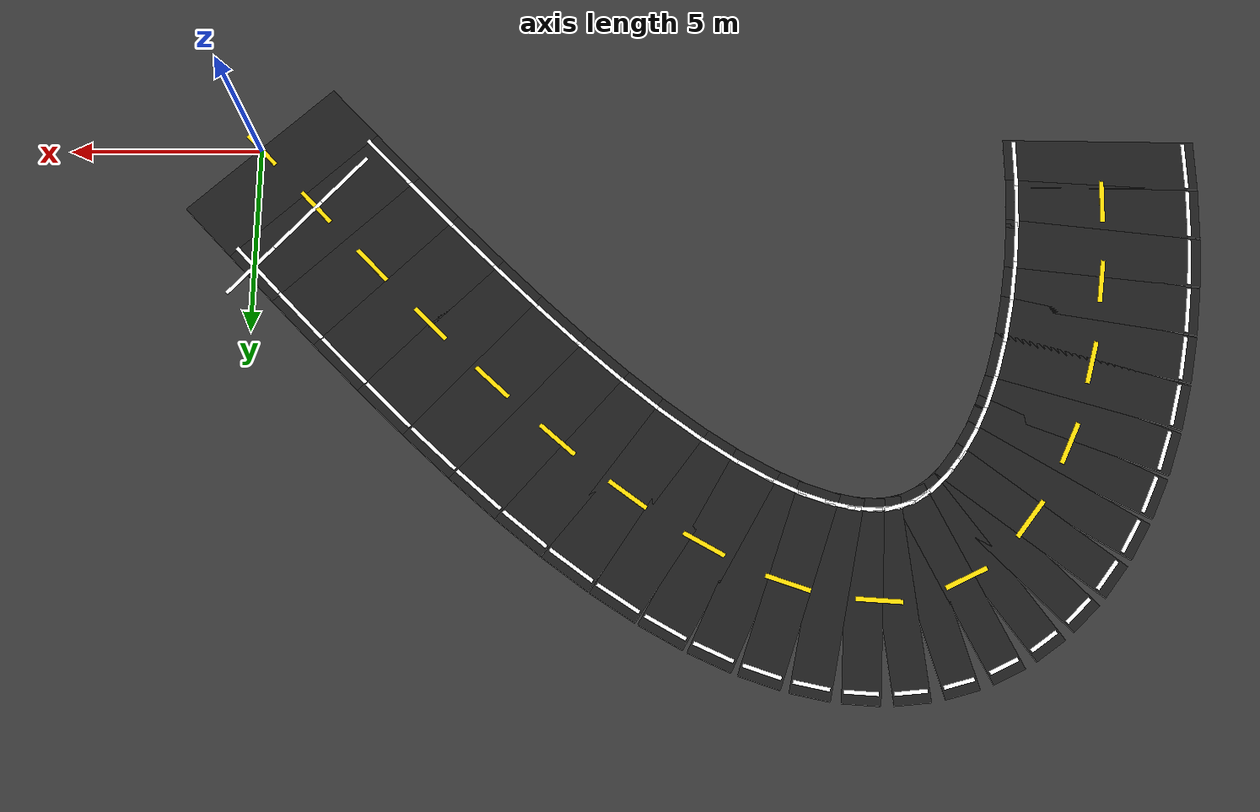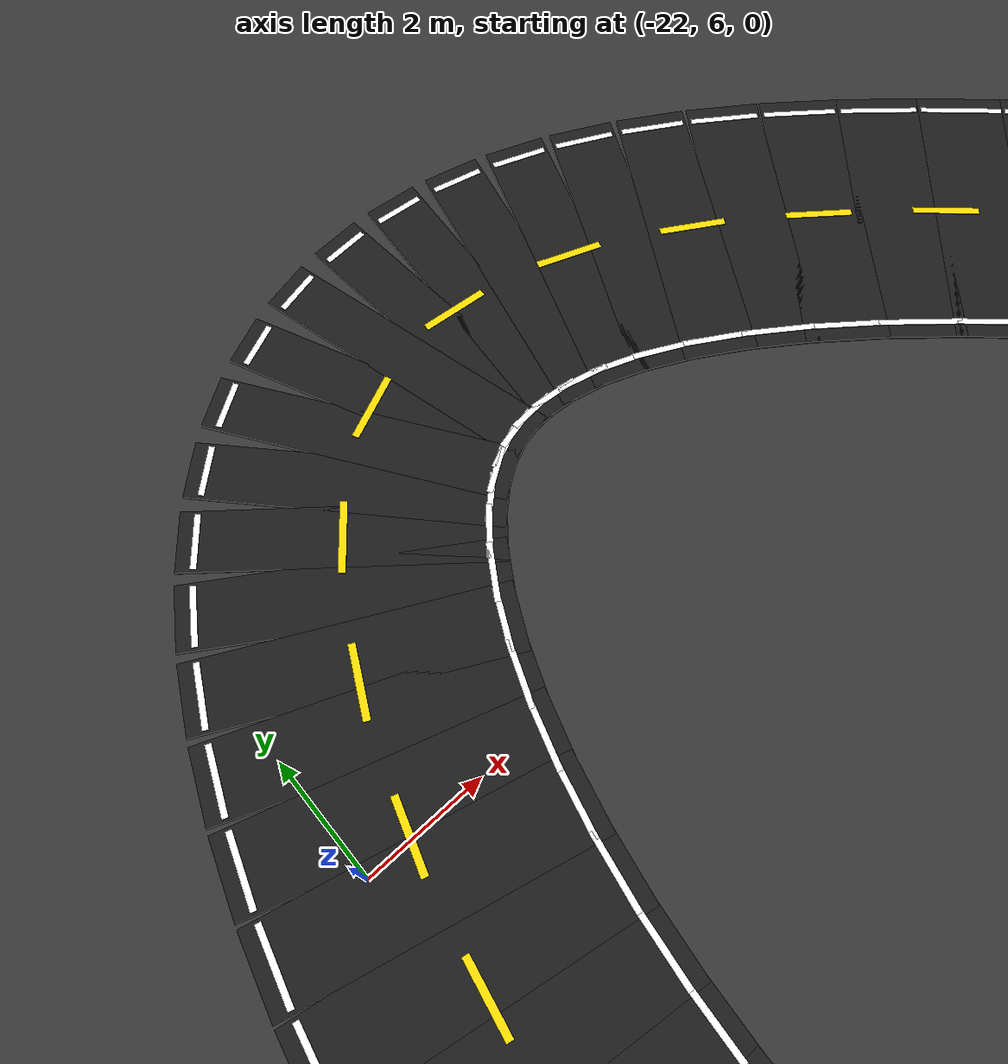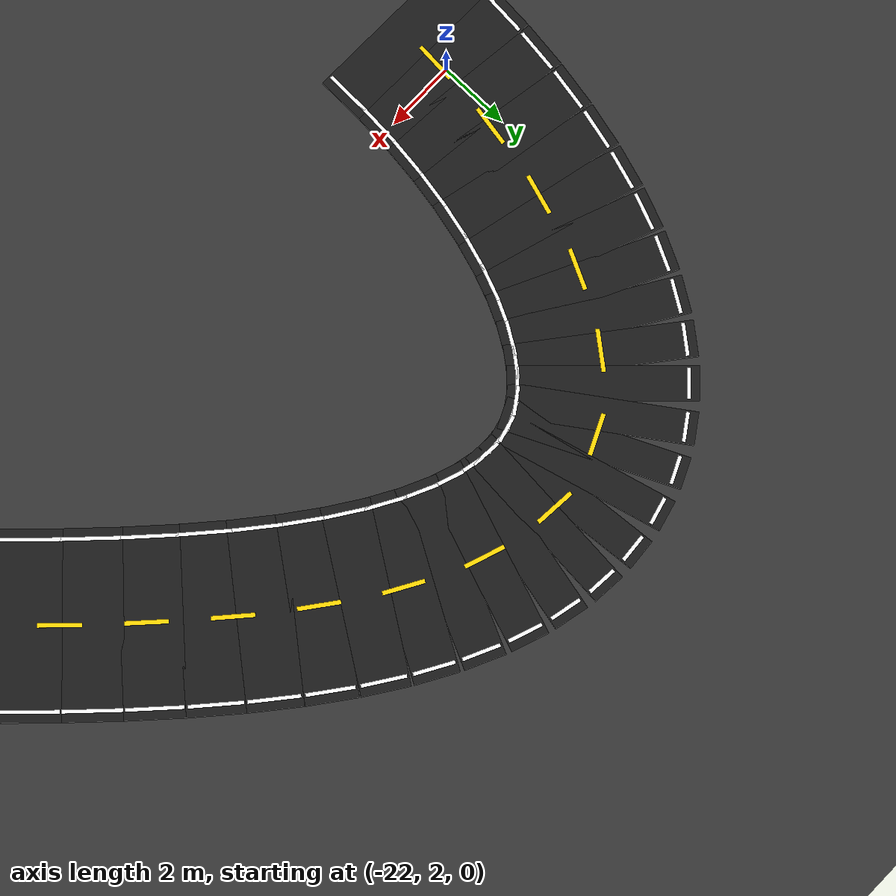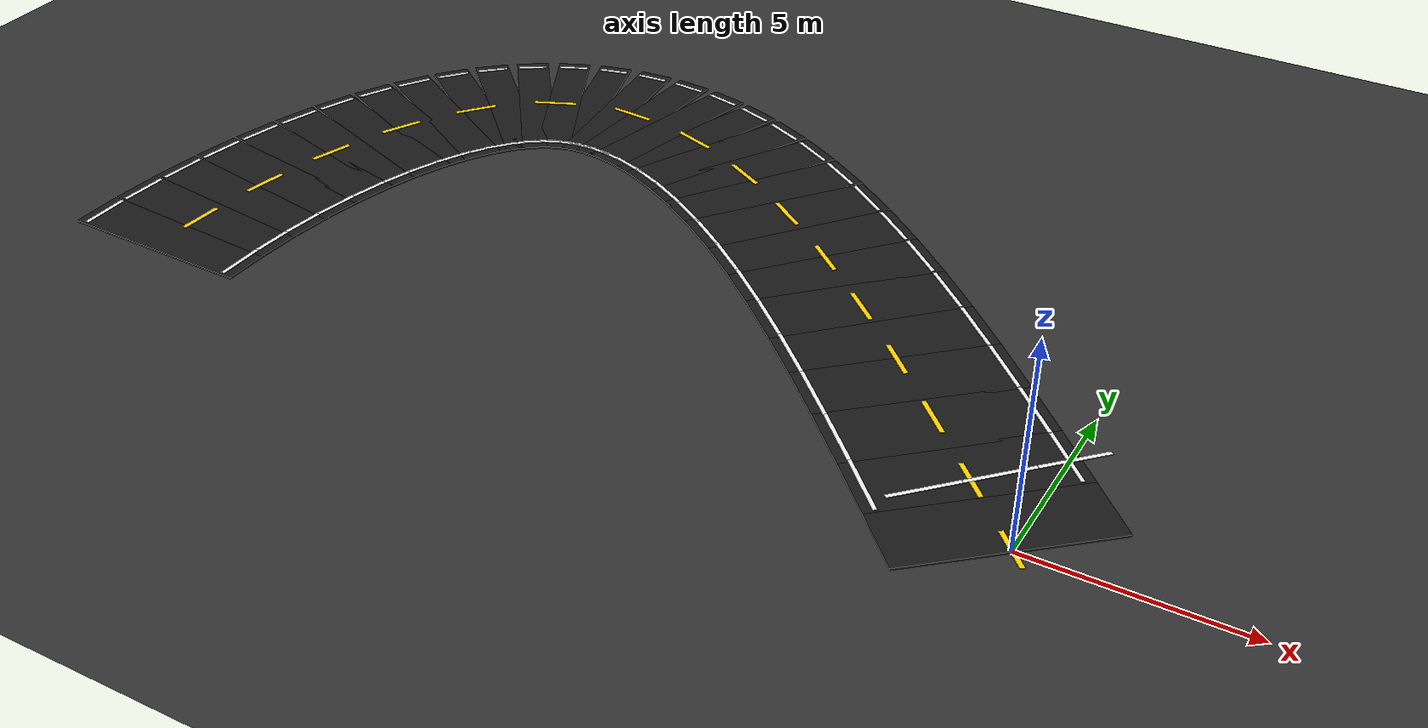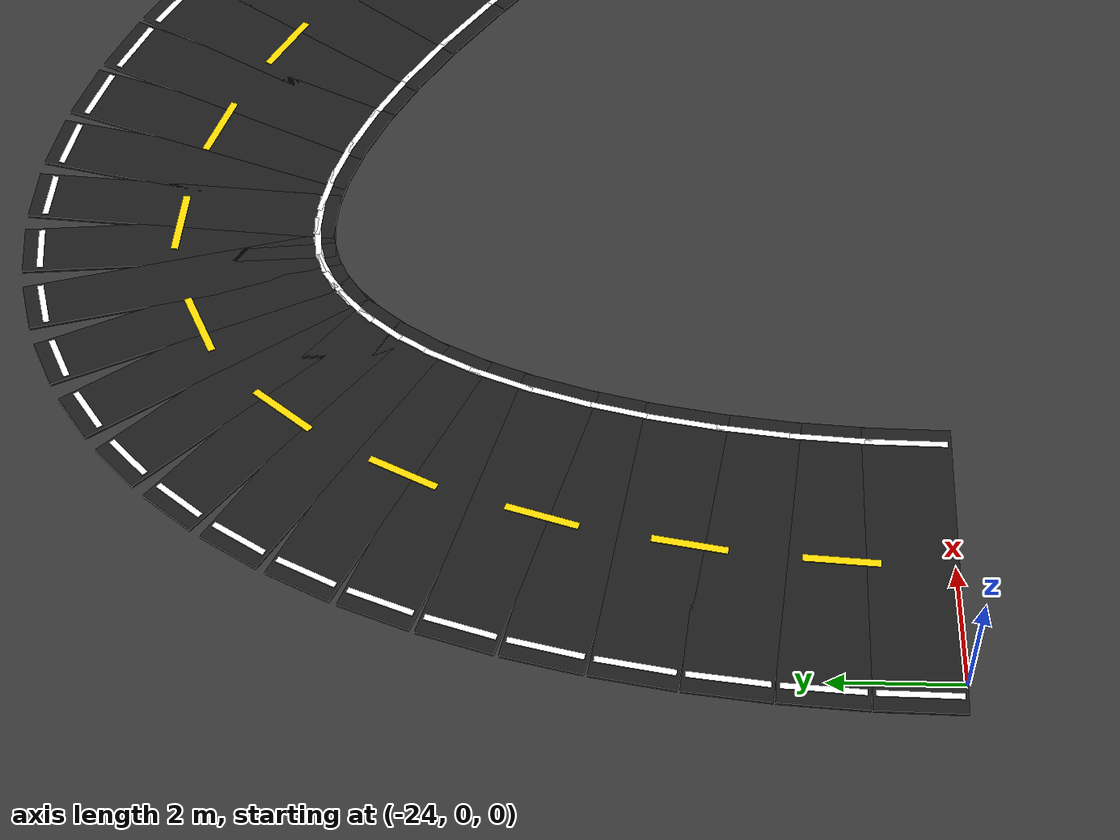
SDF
<sdf version="1.6">
 <world name="adas_figure8_circuit">
  <model name="ground">
   <static>true</static>
   <link name="link">
    <collision name="collision">
     <geometry><plane><normal>0 0 1</normal><size>80.0 80.0</size></plane></geometry>
    </collision>
    <visual name="visual">
     <geometry><plane><normal>0 0 1</normal><size>80.0 80.0</size></plane></geometry>
     <material><ambient>0.16 0.16 0.16 1</ambient><diffuse>0.20 0.20 0.20 1</diffuse></material>
    </visual>
   </link>
  </model>
  <model name="road_060">
   <static>true</static>
   <pose>-0.5757 0.6272 0.025 0 0 2.313427</pose>
   <link name="link">
    <collision name="collision"><geometry><box><size>1.8027 5.000 0.05</size></box></geometry></collision>
    <visual name="visual">
     <geometry><box><size>1.8027 5.000 0.05</size></box></geometry>
     <material><ambient>0.07 0.07 0.07 1</ambient><diffuse>0.10 0.10 0.10 1</diffuse></material>
    </visual>
   </link>
  </model>
  <model name="road_061">
   <static>true</static>
   <pose>-1.7255 1.8746 0.025 0 0 2.317549</pose>
   <link name="link">
    <collision name="collision"><geometry><box><size>1.7904 5.000 0.05</size></box></geometry></collision>
    <visual name="visual">
     <geometry><box><size>1.7904 5.000 0.05</size></box></geometry>
     <material><ambient>0.07 0.07 0.07 1</ambient><diffuse>0.10 0.10 0.10 1</diffuse></material>
    </visual>
   </link>
  </model>
  <model name="road_062">
   <static>true</static>
   <pose>-2.8706 3.1016 0.025 0 0 2.325917</pose>
   <link name="link">
    <collision name="collision"><geometry><box><size>1.7661 5.000 0.05</size></box></geometry></collision>
    <visual name="visual">
     <geometry><box><size>1.7661 5.000 0.05</size></box></geometry>
     <material><ambient>0.07 0.07 0.07 1</ambient><diffuse>0.10 0.10 0.10 1</diffuse></material>
    </visual>
   </link>
  </model>
  <model name="road_063">
   <static>true</static>
   <pose>-4.0078 4.2945 0.025 0 0 2.338784</pose>
   <link name="link">
    <collision name="collision"><geometry><box><size>1.7302 5.000 0.05</size></box></geometry></collision>
    <visual name="visual">
     <geometry><box><size>1.7302 5.000 0.05</size></box></geometry>
     <material><ambient>0.07 0.07 0.07 1</ambient><diffuse>0.10 0.10 0.10 1</diffuse></material>
    </visual>
   </link>
  </model>
  <model name="road_064">
   <static>true</static>
   <pose>-5.1340 5.4404 0.025 0 0 2.356552</pose>
   <link name="link">
    <collision name="collision"><geometry><box><size>1.6833 5.000 0.05</size></box></geometry></collision>
    <visual name="visual">
     <geometry><box><size>1.6833 5.000 0.05</size></box></geometry>
     <material><ambient>0.07 0.07 0.07 1</ambient><diffuse>0.10 0.10 0.10 1</diffuse></material>
    </visual>
   </link>
  </model>
  <model name="road_065">
   <static>true</static>
   <pose>-6.2462 6.5267 0.025 0 0 2.379794</pose>
   <link name="link">
    <collision name="collision"><geometry><box><size>1.6262 5.000 0.05</size></box></geometry></collision>
    <visual name="visual">
     <geometry><box><size>1.6262 5.000 0.05</size></box></geometry>
     <material><ambient>0.07 0.07 0.07 1</ambient><diffuse>0.10 0.10 0.10 1</diffuse></material>
    </visual>
   </link>
  </model>
  <model name="road_066">
   <static>true</static>
   <pose>-7.3412 7.5415 0.025 0 0 2.409289</pose>
   <link name="link">
    <collision name="collision"><geometry><box><size>1.5600 5.000 0.05</size></box></geometry></collision>
    <visual name="visual">
     <geometry><box><size>1.5600 5.000 0.05</size></box></geometry>
     <material><ambient>0.07 0.07 0.07 1</ambient><diffuse>0.10 0.10 0.10 1</diffuse></material>
    </visual>
   </link>
  </model>
  <model name="road_067">
   <static>true</static>
   <pose>-8.4162 8.4737 0.025 0 0 2.446072</pose>
   <link name="link">
    <collision name="collision"><geometry><box><size>1.4861 5.000 0.05</size></box></geometry></collision>
    <visual name="visual">
     <geometry><box><size>1.4861 5.000 0.05</size></box></geometry>
     <material><ambient>0.07 0.07 0.07 1</ambient><diffuse>0.10 0.10 0.10 1</diffuse></material>
    </visual>
   </link>
  </model>
  <model name="road_068">
   <static>true</static>
   <pose>-9.4680 9.3130 0.025 0 0 2.491490</pose>
   <link name="link">
    <collision name="collision"><geometry><box><size>1.4060 5.000 0.05</size></box></geometry></collision>
    <visual name="visual">
     <geometry><box><size>1.4060 5.000 0.05</size></box></geometry>
     <material><ambient>0.07 0.07 0.07 1</ambient><diffuse>0.10 0.10 0.10 1</diffuse></material>
    </visual>
   </link>
  </model>
  <model name="road_069">
   <static>true</static>
   <pose>-10.4939 10.0503 0.025 0 0 2.547260</pose>
   <link name="link">
    <collision name="collision"><geometry><box><size>1.3217 5.000 0.05</size></box></geometry></collision>
    <visual name="visual">
     <geometry><box><size>1.3217 5.000 0.05</size></box></geometry>
     <material><ambient>0.07 0.07 0.07 1</ambient><diffuse>0.10 0.10 0.10 1</diffuse></material>
    </visual>
   </link>
  </model>
  <model name="road_070">
   <static>true</static>
   <pose>-11.4910 10.6774 0.025 0 0 2.615516</pose>
   <link name="link">
    <collision name="collision"><geometry><box><size>1.2356 5.000 0.05</size></box></geometry></collision>
    <visual name="visual">
     <geometry><box><size>1.2356 5.000 0.05</size></box></geometry>
     <material><ambient>0.07 0.07 0.07 1</ambient><diffuse>0.10 0.10 0.10 1</diffuse></material>
    </visual>
   </link>
  </model>
  <model name="road_071">
   <static>true</static>
   <pose>-12.4567 11.1876 0.025 0 0 2.698785</pose>
   <link name="link">
    <collision name="collision"><geometry><box><size>1.1505 5.000 0.05</size></box></geometry></collision>
    <visual name="visual">
     <geometry><box><size>1.1505 5.000 0.05</size></box></geometry>
     <material><ambient>0.07 0.07 0.07 1</ambient><diffuse>0.10 0.10 0.10 1</diffuse></material>
    </visual>
   </link>
  </model>
  <model name="road_072">
   <static>true</static>
   <pose>-13.3882 11.5752 0.025 0 0 2.799787</pose>
   <link name="link">
    <collision name="collision"><geometry><box><size>1.0699 5.000 0.05</size></box></geometry></collision>
    <visual name="visual">
     <geometry><box><size>1.0699 5.000 0.05</size></box></geometry>
     <material><ambient>0.07 0.07 0.07 1</ambient><diffuse>0.10 0.10 0.10 1</diffuse></material>
    </visual>
   </link>
  </model>
  <model name="road_073">
   <static>true</static>
   <pose>-14.2830 11.8360 0.025 0 0 2.920897</pose>
   <link name="link">
    <collision name="collision"><geometry><box><size>0.9976 5.000 0.05</size></box></geometry></collision>
    <visual name="visual">
     <geometry><box><size>0.9976 5.000 0.05</size></box></geometry>
     <material><ambient>0.07 0.07 0.07 1</ambient><diffuse>0.10 0.10 0.10 1</diffuse></material>
    </visual>
   </link>
  </model>
  <model name="road_074">
   <static>true</static>
   <pose>-15.1386 11.9671 0.025 0 0 3.063072</pose>
   <link name="link">
    <collision name="collision"><geometry><box><size>0.9381 5.000 0.05</size></box></geometry></collision>
    <visual name="visual">
     <geometry><box><size>0.9381 5.000 0.05</size></box></geometry>
     <material><ambient>0.07 0.07 0.07 1</ambient><diffuse>0.10 0.10 0.10 1</diffuse></material>
    </visual>
   </link>
  </model>
  <model name="road_075">
   <static>true</static>
   <pose>-15.9528 11.9671 0.025 0 0 -3.058868</pose>
   <link name="link">
    <collision name="collision"><geometry><box><size>0.8956 5.000 0.05</size></box></geometry></collision>
    <visual name="visual">
     <geometry><box><size>0.8956 5.000 0.05</size></box></geometry>
     <material><ambient>0.07 0.07 0.07 1</ambient><diffuse>0.10 0.10 0.10 1</diffuse></material>
    </visual>
   </link>
  </model>
  <model name="road_076">
   <static>true</static>
   <pose>-16.7232 11.8360 0.025 0 0 -2.884716</pose>
   <link name="link">
    <collision name="collision"><geometry><box><size>0.8734 5.000 0.05</size></box></geometry></collision>
    <visual name="visual">
     <geometry><box><size>0.8734 5.000 0.05</size></box></geometry>
     <material><ambient>0.07 0.07 0.07 1</ambient><diffuse>0.10 0.10 0.10 1</diffuse></material>
    </visual>
   </link>
  </model>
  <model name="road_077">
   <static>true</static>
   <pose>-17.4478 11.5752 0.025 0 0 -2.707447</pose>
   <link name="link">
    <collision name="collision"><geometry><box><size>0.8729 5.000 0.05</size></box></geometry></collision>
    <visual name="visual">
     <geometry><box><size>0.8729 5.000 0.05</size></box></geometry>
     <material><ambient>0.07 0.07 0.07 1</ambient><diffuse>0.10 0.10 0.10 1</diffuse></material>
    </visual>
   </link>
  </model>
  <model name="road_078">
   <static>true</static>
   <pose>-18.1246 11.1876 0.025 0 0 -2.537619</pose>
   <link name="link">
    <collision name="collision"><geometry><box><size>0.8926 5.000 0.05</size></box></geometry></collision>
    <visual name="visual">
     <geometry><box><size>0.8926 5.000 0.05</size></box></geometry>
     <material><ambient>0.07 0.07 0.07 1</ambient><diffuse>0.10 0.10 0.10 1</diffuse></material>
    </visual>
   </link>
  </model>
  <model name="road_079">
   <static>true</static>
   <pose>-18.7517 10.6774 0.025 0 0 -2.383120</pose>
   <link name="link">
    <collision name="collision"><geometry><box><size>0.9291 5.000 0.05</size></box></geometry></collision>
    <visual name="visual">
     <geometry><box><size>0.9291 5.000 0.05</size></box></geometry>
     <material><ambient>0.07 0.07 0.07 1</ambient><diffuse>0.10 0.10 0.10 1</diffuse></material>
    </visual>
   </link>
  </model>
  <model name="road_080">
   <static>true</static>
   <pose>-19.3274 10.0503 0.025 0 0 -2.247587</pose>
   <link name="link">
    <collision name="collision"><geometry><box><size>0.9775 5.000 0.05</size></box></geometry></collision>
    <visual name="visual">
     <geometry><box><size>0.9775 5.000 0.05</size></box></geometry>
     <material><ambient>0.07 0.07 0.07 1</ambient><diffuse>0.10 0.10 0.10 1</diffuse></material>
    </visual>
   </link>
  </model>
  <model name="road_081">
   <static>true</static>
   <pose>-19.8501 9.3130 0.025 0 0 -2.131045</pose>
   <link name="link">
    <collision name="collision"><geometry><box><size>1.0331 5.000 0.05</size></box></geometry></collision>
    <visual name="visual">
     <geometry><box><size>1.0331 5.000 0.05</size></box></geometry>
     <material><ambient>0.07 0.07 0.07 1</ambient><diffuse>0.10 0.10 0.10 1</diffuse></material>
    </visual>
   </link>
  </model>
  <model name="road_082">
   <static>true</static>
   <pose>-20.3184 8.4737 0.025 0 0 -2.031453</pose>
   <link name="link">
    <collision name="collision"><geometry><box><size>1.0915 5.000 0.05</size></box></geometry></collision>
    <visual name="visual">
     <geometry><box><size>1.0915 5.000 0.05</size></box></geometry>
     <material><ambient>0.07 0.07 0.07 1</ambient><diffuse>0.10 0.10 0.10 1</diffuse></material>
    </visual>
   </link>
  </model>
  <model name="road_083">
   <static>true</static>
   <pose>-20.7310 7.5415 0.025 0 0 -1.946007</pose>
   <link name="link">
    <collision name="collision"><geometry><box><size>1.1491 5.000 0.05</size></box></geometry></collision>
    <visual name="visual">
     <geometry><box><size>1.1491 5.000 0.05</size></box></geometry>
     <material><ambient>0.07 0.07 0.07 1</ambient><diffuse>0.10 0.10 0.10 1</diffuse></material>
    </visual>
   </link>
  </model>
  <model name="road_084">
   <static>true</static>
   <pose>-21.0868 6.5267 0.025 0 0 -1.871890</pose>
   <link name="link">
    <collision name="collision"><geometry><box><size>1.2030 5.000 0.05</size></box></geometry></collision>
    <visual name="visual">
     <geometry><box><size>1.2030 5.000 0.05</size></box></geometry>
     <material><ambient>0.07 0.07 0.07 1</ambient><diffuse>0.10 0.10 0.10 1</diffuse></material>
    </visual>
   </link>
  </model>
  <model name="road_085">
   <static>true</static>
   <pose>-21.3848 5.4404 0.025 0 0 -1.806578</pose>
   <link name="link">
    <collision name="collision"><geometry><box><size>1.2510 5.000 0.05</size></box></geometry></collision>
    <visual name="visual">
     <geometry><box><size>1.2510 5.000 0.05</size></box></geometry>
     <material><ambient>0.07 0.07 0.07 1</ambient><diffuse>0.10 0.10 0.10 1</diffuse></material>
    </visual>
   </link>
  </model>
  <model name="road_086">
   <static>true</static>
   <pose>-21.6242 4.2945 0.025 0 0 -1.747916</pose>
   <link name="link">
    <collision name="collision"><geometry><box><size>1.2913 5.000 0.05</size></box></geometry></collision>
    <visual name="visual">
     <geometry><box><size>1.2913 5.000 0.05</size></box></geometry>
     <material><ambient>0.07 0.07 0.07 1</ambient><diffuse>0.10 0.10 0.10 1</diffuse></material>
    </visual>
   </link>
  </model>
  <model name="road_087">
   <static>true</static>
   <pose>-21.8043 3.1016 0.025 0 0 -1.694080</pose>
   <link name="link">
    <collision name="collision"><geometry><box><size>1.3225 5.000 0.05</size></box></geometry></collision>
    <visual name="visual">
     <geometry><box><size>1.3225 5.000 0.05</size></box></geometry>
     <material><ambient>0.07 0.07 0.07 1</ambient><diffuse>0.10 0.10 0.10 1</diffuse></material>
    </visual>
   </link>
  </model>
  <model name="road_088">
   <static>true</static>
   <pose>-21.9247 1.8746 0.025 0 0 -1.643510</pose>
   <link name="link">
    <collision name="collision"><geometry><box><size>1.3439 5.000 0.05</size></box></geometry></collision>
    <visual name="visual">
     <geometry><box><size>1.3439 5.000 0.05</size></box></geometry>
     <material><ambient>0.07 0.07 0.07 1</ambient><diffuse>0.10 0.10 0.10 1</diffuse></material>
    </visual>
   </link>
  </model>
  <model name="road_089">
   <static>true</static>
   <pose>-21.9849 0.6272 0.025 0 0 -1.594828</pose>
   <link name="link">
    <collision name="collision"><geometry><box><size>1.3547 5.000 0.05</size></box></geometry></collision>
    <visual name="visual">
     <geometry><box><size>1.3547 5.000 0.05</size></box></geometry>
     <material><ambient>0.07 0.07 0.07 1</ambient><diffuse>0.10 0.10 0.10 1</diffuse></material>
    </visual>
   </link>
  </model>
  <model name="center_dash_031">
   <static>true</static>
   <pose>0.0000 -0.0000 0.058 0 0 2.313427</pose>
   <link name="link">
    <visual name="visual">
     <geometry><box><size>1.150 0.12 0.02</size></box></geometry>
     <material><ambient>1 0.82 0 1</ambient><diffuse>1 0.82 0 1</diffuse></material>
    </visual>
   </link>
  </model>
  <model name="center_dash_032">
   <static>true</static>
   <pose>-1.5063 1.6378 0.058 0 0 2.317549</pose>
   <link name="link">
    <visual name="visual">
     <geometry><box><size>1.150 0.12 0.02</size></box></geometry>
     <material><ambient>1 0.82 0 1</ambient><diffuse>1 0.82 0 1</diffuse></material>
    </visual>
   </link>
  </model>
  <model name="center_dash_033">
   <static>true</static>
   <pose>-3.0242 3.2647 0.058 0 0 2.325917</pose>
   <link name="link">
    <visual name="visual">
     <geometry><box><size>1.150 0.12 0.02</size></box></geometry>
     <material><ambient>1 0.82 0 1</ambient><diffuse>1 0.82 0 1</diffuse></material>
    </visual>
   </link>
  </model>
  <model name="center_dash_034">
   <static>true</static>
   <pose>-4.5643 4.8707 0.058 0 0 2.338784</pose>
   <link name="link">
    <visual name="visual">
     <geometry><box><size>1.150 0.12 0.02</size></box></geometry>
     <material><ambient>1 0.82 0 1</ambient><diffuse>1 0.82 0 1</diffuse></material>
    </visual>
   </link>
  </model>
  <model name="center_dash_035">
   <static>true</static>
   <pose>-6.1482 6.4333 0.058 0 0 2.379794</pose>
   <link name="link">
    <visual name="visual">
     <geometry><box><size>1.150 0.12 0.02</size></box></geometry>
     <material><ambient>1 0.82 0 1</ambient><diffuse>1 0.82 0 1</diffuse></material>
    </visual>
   </link>
  </model>
  <model name="center_dash_036">
   <static>true</static>
   <pose>-7.7849 7.9404 0.058 0 0 2.409289</pose>
   <link name="link">
    <visual name="visual">
     <geometry><box><size>1.150 0.12 0.02</size></box></geometry>
     <material><ambient>1 0.82 0 1</ambient><diffuse>1 0.82 0 1</diffuse></material>
    </visual>
   </link>
  </model>
  <model name="center_dash_037">
   <static>true</static>
   <pose>-9.5099 9.3449 0.058 0 0 2.491490</pose>
   <link name="link">
    <visual name="visual">
     <geometry><box><size>1.150 0.12 0.02</size></box></geometry>
     <material><ambient>1 0.82 0 1</ambient><diffuse>1 0.82 0 1</diffuse></material>
    </visual>
   </link>
  </model>
  <model name="center_dash_038">
   <static>true</static>
   <pose>-11.3486 10.5947 0.058 0 0 2.615516</pose>
   <link name="link">
    <visual name="visual">
     <geometry><box><size>1.150 0.12 0.02</size></box></geometry>
     <material><ambient>1 0.82 0 1</ambient><diffuse>1 0.82 0 1</diffuse></material>
    </visual>
   </link>
  </model>
  <model name="center_dash_039">
   <static>true</static>
   <pose>-13.3478 11.5609 0.058 0 0 2.799787</pose>
   <link name="link">
    <visual name="visual">
     <geometry><box><size>1.150 0.12 0.02</size></box></geometry>
     <material><ambient>1 0.82 0 1</ambient><diffuse>1 0.82 0 1</diffuse></material>
    </visual>
   </link>
  </model>
  <model name="center_dash_040">
   <static>true</static>
   <pose>-15.5181 11.9970 0.058 0 0 3.063072</pose>
   <link name="link">
    <visual name="visual">
     <geometry><box><size>1.150 0.12 0.02</size></box></geometry>
     <material><ambient>1 0.82 0 1</ambient><diffuse>1 0.82 0 1</diffuse></material>
    </visual>
   </link>
  </model>
  <model name="center_dash_041">
   <static>true</static>
   <pose>-17.6577 11.4779 0.058 0 0 -2.707447</pose>
   <link name="link">
    <visual name="visual">
     <geometry><box><size>1.150 0.12 0.02</size></box></geometry>
     <material><ambient>1 0.82 0 1</ambient><diffuse>1 0.82 0 1</diffuse></material>
    </visual>
   </link>
  </model>
  <model name="center_dash_042">
   <static>true</static>
   <pose>-19.3334 10.0427 0.058 0 0 -2.247587</pose>
   <link name="link">
    <visual name="visual">
     <geometry><box><size>1.150 0.12 0.02</size></box></geometry>
     <material><ambient>1 0.82 0 1</ambient><diffuse>1 0.82 0 1</diffuse></material>
    </visual>
   </link>
  </model>
  <model name="center_dash_043">
   <static>true</static>
   <pose>-20.4816 8.1448 0.058 0 0 -2.031453</pose>
   <link name="link">
    <visual name="visual">
     <geometry><box><size>1.150 0.12 0.02</size></box></geometry>
     <material><ambient>1 0.82 0 1</ambient><diffuse>1 0.82 0 1</diffuse></material>
    </visual>
   </link>
  </model>
  <model name="center_dash_044">
   <static>true</static>
   <pose>-21.2339 6.0532 0.058 0 0 -1.871890</pose>
   <link name="link">
    <visual name="visual">
     <geometry><box><size>1.150 0.12 0.02</size></box></geometry>
     <material><ambient>1 0.82 0 1</ambient><diffuse>1 0.82 0 1</diffuse></material>
    </visual>
   </link>
  </model>
  <model name="center_dash_045">
   <static>true</static>
   <pose>-21.6987 3.8783 0.058 0 0 -1.747916</pose>
   <link name="link">
    <visual name="visual">
     <geometry><box><size>1.150 0.12 0.02</size></box></geometry>
     <material><ambient>1 0.82 0 1</ambient><diffuse>1 0.82 0 1</diffuse></material>
    </visual>
   </link>
  </model>
  <model name="center_dash_046">
   <static>true</static>
   <pose>-21.9398 1.6674 0.058 0 0 -1.643510</pose>
   <link name="link">
    <visual name="visual">
     <geometry><box><size>1.150 0.12 0.02</size></box></geometry>
     <material><ambient>1 0.82 0 1</ambient><diffuse>1 0.82 0 1</diffuse></material>
    </visual>
   </link>
  </model>
  <model name="edge_left_000">
   <static>true</static>
   <pose>-1.0598 2.1284 0.058 0 0 0.828166</pose>
   <link name="link">
    <visual name="visual">
     <geometry><box><size>1.7027 0.10 0.02</size></box></geometry>
     <material><ambient>0.95 0.95 0.95 1</ambient><diffuse>0.95 0.95 0.95 1</diffuse></material>
    </visual>
   </link>
  </model>
  <model name="edge_left_001">
   <static>true</static>
   <pose>0.0963 3.3826 0.058 0 0 0.824044</pose>
   <link name="link">
    <visual name="visual">
     <geometry><box><size>1.6904 0.10 0.02</size></box></geometry>
     <material><ambient>0.95 0.95 0.95 1</ambient><diffuse>0.95 0.95 0.95 1</diffuse></material>
    </visual>
   </link>
  </model>
  <model name="edge_left_061">
   <static>true</static>
   <pose>-3.3548 0.3667 0.058 0 0 2.317549</pose>
   <link name="link">
    <visual name="visual">
     <geometry><box><size>1.6904 0.10 0.02</size></box></geometry>
     <material><ambient>0.95 0.95 0.95 1</ambient><diffuse>0.95 0.95 0.95 1</diffuse></material>
    </visual>
   </link>
  </model>
  <model name="edge_left_062">
   <static>true</static>
   <pose>-4.4872 1.5800 0.058 0 0 2.325917</pose>
   <link name="link">
    <visual name="visual">
     <geometry><box><size>1.6661 0.10 0.02</size></box></geometry>
     <material><ambient>0.95 0.95 0.95 1</ambient><diffuse>0.95 0.95 0.95 1</diffuse></material>
    </visual>
   </link>
  </model>
  <model name="edge_left_063">
   <static>true</static>
   <pose>-5.6047 2.7523 0.058 0 0 2.338784</pose>
   <link name="link">
    <visual name="visual">
     <geometry><box><size>1.6302 0.10 0.02</size></box></geometry>
     <material><ambient>0.95 0.95 0.95 1</ambient><diffuse>0.95 0.95 0.95 1</diffuse></material>
    </visual>
   </link>
  </model>
  <model name="edge_left_064">
   <static>true</static>
   <pose>-6.7033 3.8701 0.058 0 0 2.356552</pose>
   <link name="link">
    <visual name="visual">
     <geometry><box><size>1.5833 0.10 0.02</size></box></geometry>
     <material><ambient>0.95 0.95 0.95 1</ambient><diffuse>0.95 0.95 0.95 1</diffuse></material>
    </visual>
   </link>
  </model>
  <model name="edge_left_065">
   <static>true</static>
   <pose>-7.7785 4.9203 0.058 0 0 2.379794</pose>
   <link name="link">
    <visual name="visual">
     <geometry><box><size>1.5262 0.10 0.02</size></box></geometry>
     <material><ambient>0.95 0.95 0.95 1</ambient><diffuse>0.95 0.95 0.95 1</diffuse></material>
    </visual>
   </link>
  </model>
  <model name="edge_left_066">
   <static>true</static>
   <pose>-8.8255 5.8906 0.058 0 0 2.409289</pose>
   <link name="link">
    <visual name="visual">
     <geometry><box><size>1.4600 0.10 0.02</size></box></geometry>
     <material><ambient>0.95 0.95 0.95 1</ambient><diffuse>0.95 0.95 0.95 1</diffuse></material>
    </visual>
   </link>
  </model>
  <model name="edge_left_067">
   <static>true</static>
   <pose>-9.8387 6.7693 0.058 0 0 2.446072</pose>
   <link name="link">
    <visual name="visual">
     <geometry><box><size>1.3861 0.10 0.02</size></box></geometry>
     <material><ambient>0.95 0.95 0.95 1</ambient><diffuse>0.95 0.95 0.95 1</diffuse></material>
    </visual>
   </link>
  </model>
  <model name="edge_left_068">
   <static>true</static>
   <pose>-10.8117 7.5458 0.058 0 0 2.491490</pose>
   <link name="link">
    <visual name="visual">
     <geometry><box><size>1.3060 0.10 0.02</size></box></geometry>
     <material><ambient>0.95 0.95 0.95 1</ambient><diffuse>0.95 0.95 0.95 1</diffuse></material>
    </visual>
   </link>
  </model>
  <model name="edge_left_069">
   <static>true</static>
   <pose>-11.7370 8.2109 0.058 0 0 2.547260</pose>
   <link name="link">
    <visual name="visual">
     <geometry><box><size>1.2217 0.10 0.02</size></box></geometry>
     <material><ambient>0.95 0.95 0.95 1</ambient><diffuse>0.95 0.95 0.95 1</diffuse></material>
    </visual>
   </link>
  </model>
  <model name="edge_left_070">
   <static>true</static>
   <pose>-12.6058 8.7576 0.058 0 0 2.615516</pose>
   <link name="link">
    <visual name="visual">
     <geometry><box><size>1.1356 0.10 0.02</size></box></geometry>
     <material><ambient>0.95 0.95 0.95 1</ambient><diffuse>0.95 0.95 0.95 1</diffuse></material>
    </visual>
   </link>
  </model>
  <model name="edge_left_071">
   <static>true</static>
   <pose>-13.4079 9.1817 0.058 0 0 2.698785</pose>
   <link name="link">
    <visual name="visual">
     <geometry><box><size>1.0505 0.10 0.02</size></box></geometry>
     <material><ambient>0.95 0.95 0.95 1</ambient><diffuse>0.95 0.95 0.95 1</diffuse></material>
    </visual>
   </link>
  </model>
  <model name="edge_left_072">
   <static>true</static>
   <pose>-14.1323 9.4836 0.058 0 0 2.799787</pose>
   <link name="link">
    <visual name="visual">
     <geometry><box><size>0.9699 0.10 0.02</size></box></geometry>
     <material><ambient>0.95 0.95 0.95 1</ambient><diffuse>0.95 0.95 0.95 1</diffuse></material>
    </visual>
   </link>
  </model>
  <model name="edge_left_073">
   <static>true</static>
   <pose>-14.7689 9.6699 0.058 0 0 2.920897</pose>
   <link name="link">
    <visual name="visual">
     <geometry><box><size>0.8976 0.10 0.02</size></box></geometry>
     <material><ambient>0.95 0.95 0.95 1</ambient><diffuse>0.95 0.95 0.95 1</diffuse></material>
    </visual>
   </link>
  </model>
  <model name="edge_left_074">
   <static>true</static>
   <pose>-15.3127 9.7540 0.058 0 0 3.063072</pose>
   <link name="link">
    <visual name="visual">
     <geometry><box><size>0.8381 0.10 0.02</size></box></geometry>
     <material><ambient>0.95 0.95 0.95 1</ambient><diffuse>0.95 0.95 0.95 1</diffuse></material>
    </visual>
   </link>
  </model>
  <model name="edge_left_075">
   <static>true</static>
   <pose>-15.7693 9.7547 0.058 0 0 -3.058868</pose>
   <link name="link">
    <visual name="visual">
     <geometry><box><size>0.7956 0.10 0.02</size></box></geometry>
     <material><ambient>0.95 0.95 0.95 1</ambient><diffuse>0.95 0.95 0.95 1</diffuse></material>
    </visual>
   </link>
  </model>
  <model name="edge_left_076">
   <static>true</static>
   <pose>-16.1592 9.6889 0.058 0 0 -2.884716</pose>
   <link name="link">
    <visual name="visual">
     <geometry><box><size>0.7734 0.10 0.02</size></box></geometry>
     <material><ambient>0.95 0.95 0.95 1</ambient><diffuse>0.95 0.95 0.95 1</diffuse></material>
    </visual>
   </link>
  </model>
  <model name="edge_left_077">
   <static>true</static>
   <pose>-16.5140 9.5612 0.058 0 0 -2.707447</pose>
   <link name="link">
    <visual name="visual">
     <geometry><box><size>0.7729 0.10 0.02</size></box></geometry>
     <material><ambient>0.95 0.95 0.95 1</ambient><diffuse>0.95 0.95 0.95 1</diffuse></material>
    </visual>
   </link>
  </model>
  <model name="edge_left_078">
   <static>true</static>
   <pose>-16.8638 9.3604 0.058 0 0 -2.537619</pose>
   <link name="link">
    <visual name="visual">
     <geometry><box><size>0.7926 0.10 0.02</size></box></geometry>
     <material><ambient>0.95 0.95 0.95 1</ambient><diffuse>0.95 0.95 0.95 1</diffuse></material>
    </visual>
   </link>
  </model>
  <model name="edge_left_079">
   <static>true</static>
   <pose>-17.2247 9.0660 0.058 0 0 -2.383120</pose>
   <link name="link">
    <visual name="visual">
     <geometry><box><size>0.8291 0.10 0.02</size></box></geometry>
     <material><ambient>0.95 0.95 0.95 1</ambient><diffuse>0.95 0.95 0.95 1</diffuse></material>
    </visual>
   </link>
  </model>
  <model name="edge_left_080">
   <static>true</static>
   <pose>-17.5967 8.6599 0.058 0 0 -2.247587</pose>
   <link name="link">
    <visual name="visual">
     <geometry><box><size>0.8775 0.10 0.02</size></box></geometry>
     <material><ambient>0.95 0.95 0.95 1</ambient><diffuse>0.95 0.95 0.95 1</diffuse></material>
    </visual>
   </link>
  </model>
  <model name="edge_left_081">
   <static>true</static>
   <pose>-17.9695 8.1333 0.058 0 0 -2.131045</pose>
   <link name="link">
    <visual name="visual">
     <geometry><box><size>0.9331 0.10 0.02</size></box></geometry>
     <material><ambient>0.95 0.95 0.95 1</ambient><diffuse>0.95 0.95 0.95 1</diffuse></material>
    </visual>
   </link>
  </model>
  <model name="edge_left_082">
   <static>true</static>
   <pose>-18.3298 7.4868 0.058 0 0 -2.031453</pose>
   <link name="link">
    <visual name="visual">
     <geometry><box><size>0.9915 0.10 0.02</size></box></geometry>
     <material><ambient>0.95 0.95 0.95 1</ambient><diffuse>0.95 0.95 0.95 1</diffuse></material>
    </visual>
   </link>
  </model>
  <model name="edge_left_083">
   <static>true</static>
   <pose>-18.6655 6.7279 0.058 0 0 -1.946007</pose>
   <link name="link">
    <visual name="visual">
     <geometry><box><size>1.0491 0.10 0.02</size></box></geometry>
     <material><ambient>0.95 0.95 0.95 1</ambient><diffuse>0.95 0.95 0.95 1</diffuse></material>
    </visual>
   </link>
  </model>
  <model name="edge_left_084">
   <static>true</static>
   <pose>-18.9667 5.8683 0.058 0 0 -1.871890</pose>
   <link name="link">
    <visual name="visual">
     <geometry><box><size>1.1030 0.10 0.02</size></box></geometry>
     <material><ambient>0.95 0.95 0.95 1</ambient><diffuse>0.95 0.95 0.95 1</diffuse></material>
    </visual>
   </link>
  </model>
  <model name="edge_left_085">
   <static>true</static>
   <pose>-19.2262 4.9218 0.058 0 0 -1.806578</pose>
   <link name="link">
    <visual name="visual">
     <geometry><box><size>1.1510 0.10 0.02</size></box></geometry>
     <material><ambient>0.95 0.95 0.95 1</ambient><diffuse>0.95 0.95 0.95 1</diffuse></material>
    </visual>
   </link>
  </model>
  <model name="edge_left_086">
   <static>true</static>
   <pose>-19.4389 3.9034 0.058 0 0 -1.747916</pose>
   <link name="link">
    <visual name="visual">
     <geometry><box><size>1.1913 0.10 0.02</size></box></geometry>
     <material><ambient>0.95 0.95 0.95 1</ambient><diffuse>0.95 0.95 0.95 1</diffuse></material>
    </visual>
   </link>
  </model>
  <model name="edge_left_087">
   <static>true</static>
   <pose>-19.6012 2.8286 0.058 0 0 -1.694080</pose>
   <link name="link">
    <visual name="visual">
     <geometry><box><size>1.2225 0.10 0.02</size></box></geometry>
     <material><ambient>0.95 0.95 0.95 1</ambient><diffuse>0.95 0.95 0.95 1</diffuse></material>
    </visual>
   </link>
  </model>
  <model name="edge_left_088">
   <static>true</static>
   <pose>-19.7105 1.7134 0.058 0 0 -1.643510</pose>
   <link name="link">
    <visual name="visual">
     <geometry><box><size>1.2439 0.10 0.02</size></box></geometry>
     <material><ambient>0.95 0.95 0.95 1</ambient><diffuse>0.95 0.95 0.95 1</diffuse></material>
    </visual>
   </link>
  </model>
  <model name="edge_left_089">
   <static>true</static>
   <pose>-19.7656 0.5738 0.058 0 0 -1.594828</pose>
   <link name="link">
    <visual name="visual">
     <geometry><box><size>1.2547 0.10 0.02</size></box></geometry>
     <material><ambient>0.95 0.95 0.95 1</ambient><diffuse>0.95 0.95 0.95 1</diffuse></material>
    </visual>
   </link>
  </model>
  <model name="edge_left_119">
   <static>true</static>
   <pose>-2.2112 0.8741 0.058 0 0 0.828166</pose>
   <link name="link">
    <visual name="visual">
     <geometry><box><size>1.7027 0.10 0.02</size></box></geometry>
     <material><ambient>0.95 0.95 0.95 1</ambient><diffuse>0.95 0.95 0.95 1</diffuse></material>
    </visual>
   </link>
  </model>
  <model name="edge_right_061">
   <static>true</static>
   <pose>-0.0963 3.3826 0.058 0 0 2.317549</pose>
   <link name="link">
    <visual name="visual">
     <geometry><box><size>1.6904 0.10 0.02</size></box></geometry>
     <material><ambient>0.95 0.95 0.95 1</ambient><diffuse>0.95 0.95 0.95 1</diffuse></material>
    </visual>
   </link>
  </model>
  <model name="edge_right_062">
   <static>true</static>
   <pose>-1.2540 4.6231 0.058 0 0 2.325917</pose>
   <link name="link">
    <visual name="visual">
     <geometry><box><size>1.6661 0.10 0.02</size></box></geometry>
     <material><ambient>0.95 0.95 0.95 1</ambient><diffuse>0.95 0.95 0.95 1</diffuse></material>
    </visual>
   </link>
  </model>
  <model name="edge_right_063">
   <static>true</static>
   <pose>-2.4109 5.8367 0.058 0 0 2.338784</pose>
   <link name="link">
    <visual name="visual">
     <geometry><box><size>1.6302 0.10 0.02</size></box></geometry>
     <material><ambient>0.95 0.95 0.95 1</ambient><diffuse>0.95 0.95 0.95 1</diffuse></material>
    </visual>
   </link>
  </model>
  <model name="edge_right_064">
   <static>true</static>
   <pose>-3.5648 7.0108 0.058 0 0 2.356552</pose>
   <link name="link">
    <visual name="visual">
     <geometry><box><size>1.5833 0.10 0.02</size></box></geometry>
     <material><ambient>0.95 0.95 0.95 1</ambient><diffuse>0.95 0.95 0.95 1</diffuse></material>
    </visual>
   </link>
  </model>
  <model name="edge_right_065">
   <static>true</static>
   <pose>-4.7139 8.1331 0.058 0 0 2.379794</pose>
   <link name="link">
    <visual name="visual">
     <geometry><box><size>1.5262 0.10 0.02</size></box></geometry>
     <material><ambient>0.95 0.95 0.95 1</ambient><diffuse>0.95 0.95 0.95 1</diffuse></material>
    </visual>
   </link>
  </model>
  <model name="edge_right_066">
   <static>true</static>
   <pose>-5.8570 9.1924 0.058 0 0 2.409289</pose>
   <link name="link">
    <visual name="visual">
     <geometry><box><size>1.4600 0.10 0.02</size></box></geometry>
     <material><ambient>0.95 0.95 0.95 1</ambient><diffuse>0.95 0.95 0.95 1</diffuse></material>
    </visual>
   </link>
  </model>
  <model name="edge_right_067">
   <static>true</static>
   <pose>-6.9936 10.1780 0.058 0 0 2.446072</pose>
   <link name="link">
    <visual name="visual">
     <geometry><box><size>1.3861 0.10 0.02</size></box></geometry>
     <material><ambient>0.95 0.95 0.95 1</ambient><diffuse>0.95 0.95 0.95 1</diffuse></material>
    </visual>
   </link>
  </model>
  <model name="edge_right_068">
   <static>true</static>
   <pose>-8.1243 11.0801 0.058 0 0 2.491490</pose>
   <link name="link">
    <visual name="visual">
     <geometry><box><size>1.3060 0.10 0.02</size></box></geometry>
     <material><ambient>0.95 0.95 0.95 1</ambient><diffuse>0.95 0.95 0.95 1</diffuse></material>
    </visual>
   </link>
  </model>
  <model name="edge_right_069">
   <static>true</static>
   <pose>-9.2508 11.8896 0.058 0 0 2.547260</pose>
   <link name="link">
    <visual name="visual">
     <geometry><box><size>1.2217 0.10 0.02</size></box></geometry>
     <material><ambient>0.95 0.95 0.95 1</ambient><diffuse>0.95 0.95 0.95 1</diffuse></material>
    </visual>
   </link>
  </model>
  <model name="edge_right_070">
   <static>true</static>
   <pose>-10.3763 12.5972 0.058 0 0 2.615516</pose>
   <link name="link">
    <visual name="visual">
     <geometry><box><size>1.1356 0.10 0.02</size></box></geometry>
     <material><ambient>0.95 0.95 0.95 1</ambient><diffuse>0.95 0.95 0.95 1</diffuse></material>
    </visual>
   </link>
  </model>
  <model name="edge_right_071">
   <static>true</static>
   <pose>-11.5054 13.1935 0.058 0 0 2.698785</pose>
   <link name="link">
    <visual name="visual">
     <geometry><box><size>1.0505 0.10 0.02</size></box></geometry>
     <material><ambient>0.95 0.95 0.95 1</ambient><diffuse>0.95 0.95 0.95 1</diffuse></material>
    </visual>
   </link>
  </model>
  <model name="edge_right_072">
   <static>true</static>
   <pose>-12.6440 13.6668 0.058 0 0 2.799787</pose>
   <link name="link">
    <visual name="visual">
     <geometry><box><size>0.9699 0.10 0.02</size></box></geometry>
     <material><ambient>0.95 0.95 0.95 1</ambient><diffuse>0.95 0.95 0.95 1</diffuse></material>
    </visual>
   </link>
  </model>
  <model name="edge_right_073">
   <static>true</static>
   <pose>-13.7970 14.0022 0.058 0 0 2.920897</pose>
   <link name="link">
    <visual name="visual">
     <geometry><box><size>0.8976 0.10 0.02</size></box></geometry>
     <material><ambient>0.95 0.95 0.95 1</ambient><diffuse>0.95 0.95 0.95 1</diffuse></material>
    </visual>
   </link>
  </model>
  <model name="edge_right_074">
   <static>true</static>
   <pose>-14.9645 14.1803 0.058 0 0 3.063072</pose>
   <link name="link">
    <visual name="visual">
     <geometry><box><size>0.8381 0.10 0.02</size></box></geometry>
     <material><ambient>0.95 0.95 0.95 1</ambient><diffuse>0.95 0.95 0.95 1</diffuse></material>
    </visual>
   </link>
  </model>
  <model name="edge_right_075">
   <static>true</static>
   <pose>-16.1362 14.1795 0.058 0 0 -3.058868</pose>
   <link name="link">
    <visual name="visual">
     <geometry><box><size>0.7956 0.10 0.02</size></box></geometry>
     <material><ambient>0.95 0.95 0.95 1</ambient><diffuse>0.95 0.95 0.95 1</diffuse></material>
    </visual>
   </link>
  </model>
  <model name="edge_right_076">
   <static>true</static>
   <pose>-17.2872 13.9832 0.058 0 0 -2.884716</pose>
   <link name="link">
    <visual name="visual">
     <geometry><box><size>0.7734 0.10 0.02</size></box></geometry>
     <material><ambient>0.95 0.95 0.95 1</ambient><diffuse>0.95 0.95 0.95 1</diffuse></material>
    </visual>
   </link>
  </model>
  <model name="edge_right_077">
   <static>true</static>
   <pose>-18.3816 13.5893 0.058 0 0 -2.707447</pose>
   <link name="link">
    <visual name="visual">
     <geometry><box><size>0.7729 0.10 0.02</size></box></geometry>
     <material><ambient>0.95 0.95 0.95 1</ambient><diffuse>0.95 0.95 0.95 1</diffuse></material>
    </visual>
   </link>
  </model>
  <model name="edge_right_078">
   <static>true</static>
   <pose>-19.3853 13.0149 0.058 0 0 -2.537619</pose>
   <link name="link">
    <visual name="visual">
     <geometry><box><size>0.7926 0.10 0.02</size></box></geometry>
     <material><ambient>0.95 0.95 0.95 1</ambient><diffuse>0.95 0.95 0.95 1</diffuse></material>
    </visual>
   </link>
  </model>
  <model name="edge_right_079">
   <static>true</static>
   <pose>-20.2786 12.2889 0.058 0 0 -2.383120</pose>
   <link name="link">
    <visual name="visual">
     <geometry><box><size>0.8291 0.10 0.02</size></box></geometry>
     <material><ambient>0.95 0.95 0.95 1</ambient><diffuse>0.95 0.95 0.95 1</diffuse></material>
    </visual>
   </link>
  </model>
  <model name="edge_right_080">
   <static>true</static>
   <pose>-21.0580 11.4406 0.058 0 0 -2.247587</pose>
   <link name="link">
    <visual name="visual">
     <geometry><box><size>0.8775 0.10 0.02</size></box></geometry>
     <material><ambient>0.95 0.95 0.95 1</ambient><diffuse>0.95 0.95 0.95 1</diffuse></material>
    </visual>
   </link>
  </model>
  <model name="edge_right_081">
   <static>true</static>
   <pose>-21.7307 10.4927 0.058 0 0 -2.131045</pose>
   <link name="link">
    <visual name="visual">
     <geometry><box><size>0.9331 0.10 0.02</size></box></geometry>
     <material><ambient>0.95 0.95 0.95 1</ambient><diffuse>0.95 0.95 0.95 1</diffuse></material>
    </visual>
   </link>
  </model>
  <model name="edge_right_082">
   <static>true</static>
   <pose>-22.3070 9.4605 0.058 0 0 -2.031453</pose>
   <link name="link">
    <visual name="visual">
     <geometry><box><size>0.9915 0.10 0.02</size></box></geometry>
     <material><ambient>0.95 0.95 0.95 1</ambient><diffuse>0.95 0.95 0.95 1</diffuse></material>
    </visual>
   </link>
  </model>
  <model name="edge_right_083">
   <static>true</static>
   <pose>-22.7966 8.3551 0.058 0 0 -1.946007</pose>
   <link name="link">
    <visual name="visual">
     <geometry><box><size>1.0491 0.10 0.02</size></box></geometry>
     <material><ambient>0.95 0.95 0.95 1</ambient><diffuse>0.95 0.95 0.95 1</diffuse></material>
    </visual>
   </link>
  </model>
  <model name="edge_right_084">
   <static>true</static>
   <pose>-23.2069 7.1851 0.058 0 0 -1.871890</pose>
   <link name="link">
    <visual name="visual">
     <geometry><box><size>1.1030 0.10 0.02</size></box></geometry>
     <material><ambient>0.95 0.95 0.95 1</ambient><diffuse>0.95 0.95 0.95 1</diffuse></material>
    </visual>
   </link>
  </model>
  <model name="edge_right_085">
   <static>true</static>
   <pose>-23.5434 5.9590 0.058 0 0 -1.806578</pose>
   <link name="link">
    <visual name="visual">
     <geometry><box><size>1.1510 0.10 0.02</size></box></geometry>
     <material><ambient>0.95 0.95 0.95 1</ambient><diffuse>0.95 0.95 0.95 1</diffuse></material>
    </visual>
   </link>
  </model>
  <model name="edge_right_086">
   <static>true</static>
   <pose>-23.8095 4.6857 0.058 0 0 -1.747916</pose>
   <link name="link">
    <visual name="visual">
     <geometry><box><size>1.1913 0.10 0.02</size></box></geometry>
     <material><ambient>0.95 0.95 0.95 1</ambient><diffuse>0.95 0.95 0.95 1</diffuse></material>
    </visual>
   </link>
  </model>
  <model name="edge_right_087">
   <static>true</static>
   <pose>-24.0075 3.3746 0.058 0 0 -1.694080</pose>
   <link name="link">
    <visual name="visual">
     <geometry><box><size>1.2225 0.10 0.02</size></box></geometry>
     <material><ambient>0.95 0.95 0.95 1</ambient><diffuse>0.95 0.95 0.95 1</diffuse></material>
    </visual>
   </link>
  </model>
  <model name="edge_right_088">
   <static>true</static>
   <pose>-24.1388 2.0359 0.058 0 0 -1.643510</pose>
   <link name="link">
    <visual name="visual">
     <geometry><box><size>1.2439 0.10 0.02</size></box></geometry>
     <material><ambient>0.95 0.95 0.95 1</ambient><diffuse>0.95 0.95 0.95 1</diffuse></material>
    </visual>
   </link>
  </model>
  <model name="edge_right_089">
   <static>true</static>
   <pose>-24.2043 0.6805 0.058 0 0 -1.594828</pose>
   <link name="link">
    <visual name="visual">
     <geometry><box><size>1.2547 0.10 0.02</size></box></geometry>
     <material><ambient>0.95 0.95 0.95 1</ambient><diffuse>0.95 0.95 0.95 1</diffuse></material>
    </visual>
   </link>
  </model>
 </world>
</sdf>
